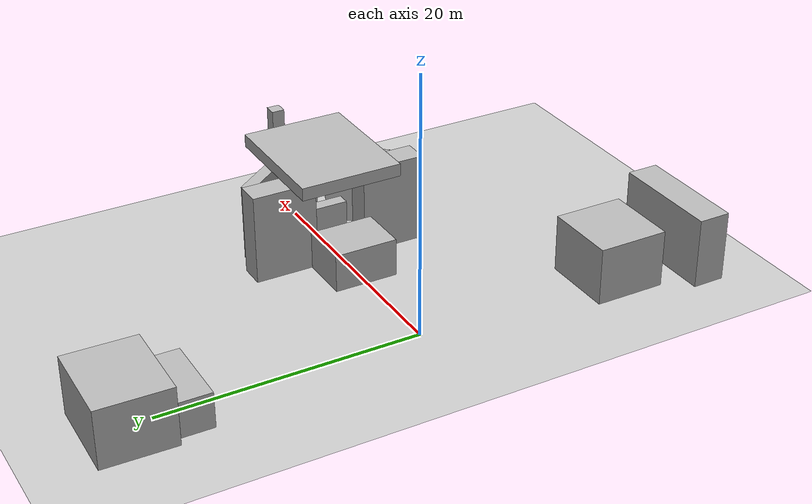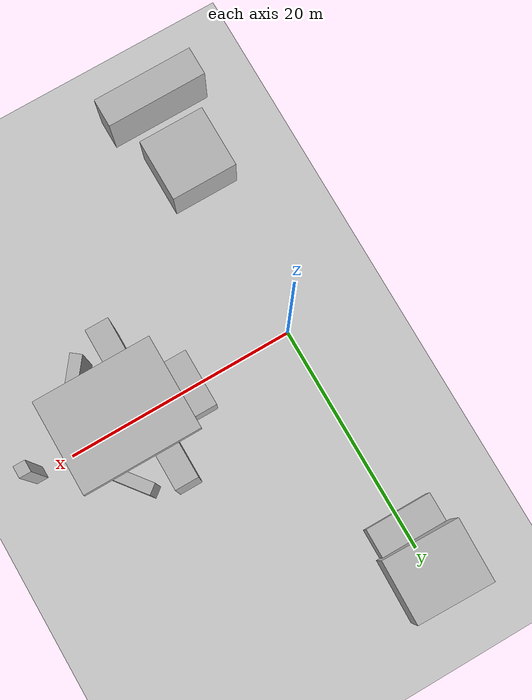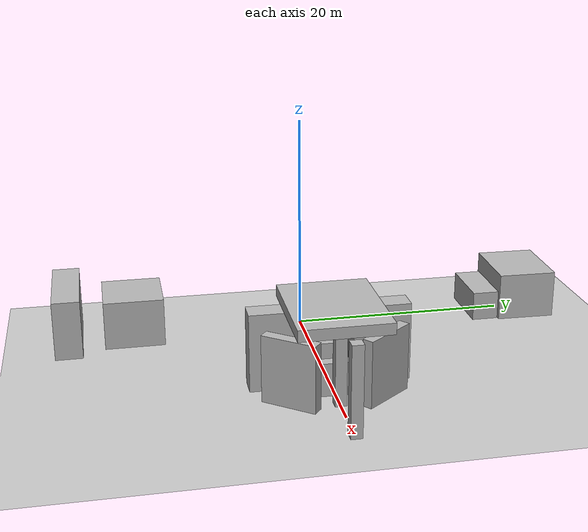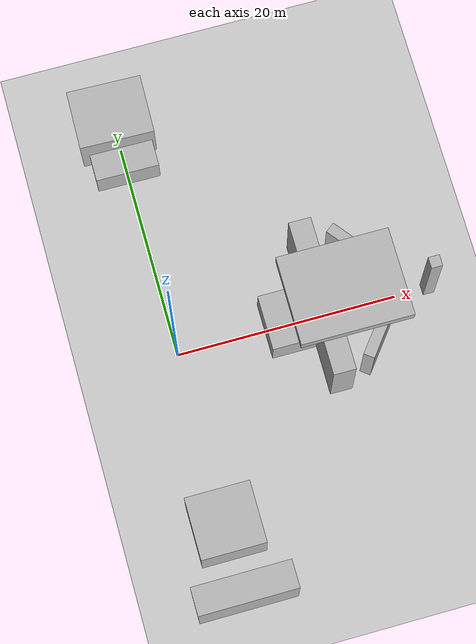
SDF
<sdf version="1.6">
 <world name="default">
  <light name="sun" type="directional">
   <pose>0 0 10 0 -0 0</pose>
   <diffuse>0.8 0.8 0.8 1</diffuse>
   <specular>0.2 0.2 0.2 1</specular>
   <attenuation>
    <range>1000</range>
    <constant>0.9</constant>
    <linear>0.01</linear>
    <quadratic>0.001</quadratic>
   </attenuation>
   <direction>-0.5 0.1 -0.9</direction>
  </light>
  <model name="ground_plane">
   <static>1</static>
   <link name="link">
    <collision name="collision">
     <geometry><plane><normal>0 0 1</normal><size>100 100</size></plane></geometry>
     <surface>
      <contact><collide_bitmask>65535</collide_bitmask></contact>
      <friction><ode><mu>100</mu><mu2>50</mu2></ode></friction>
     </surface>
    </collision>
    <visual name="visual">
     <cast_shadows>0</cast_shadows>
     <geometry><plane><normal>0 0 1</normal><size>100 100</size></plane></geometry>
     <material>
      <script><uri>file://media/materials/scripts/gazebo.material</uri><name>Gazebo/Grey</name></script>
     </material>
    </visual>
   </link>
  </model>
  <physics name="default_physics" default="0" type="ode">
   <ode>
    <solver>
     <type>quick</type>
     <iters>10</iters>
     <sor>1.3</sor>
     <use_dynamic_moi_rescaling>0</use_dynamic_moi_rescaling>
    </solver>
    <constraints>
     <cfm>0</cfm>
     <erp>0.2</erp>
     <contact_max_correcting_vel>100</contact_max_correcting_vel>
     <contact_surface_layer>0.001</contact_surface_layer>
    </constraints>
   </ode>
   <max_step_size>0.004</max_step_size>
   <real_time_factor>1</real_time_factor>
   <real_time_update_rate>250</real_time_update_rate>
  </physics>
  <model name="box0">
   <pose>9.9934 -0.001207 1.5 0 1.1e-05 -0.000728</pose>
   <link name="link">
    <collision name="collision"><geometry><box><size>4 5 3</size></box></geometry></collision>
    <visual name="visual"><geometry><box><size>4 5 3</size></box></geometry></visual>
    <inertial>
     <inertia><ixx>1</ixx><ixy>0</ixy><ixz>0</ixz><iyy>1</iyy><iyz>0</iyz><izz>1</izz></inertia>
     <mass>1</mass>
    </inertial>
   </link>
  </model>
  <model name="box1">
   <pose>13.0038 4.5 3.49994 7e-06 -3e-06 -0.000438</pose>
   <link name="link">
    <collision name="collision"><geometry><box><size>2 5 7</size></box></geometry></collision>
    <visual name="visual"><geometry><box><size>2 5 7</size></box></geometry></visual>
    <inertial>
     <inertia><ixx>1</ixx><ixy>0</ixy><ixz>0</ixz><iyy>1</iyy><iyz>0</iyz><izz>1</izz></inertia>
     <mass>1</mass>
    </inertial>
   </link>
  </model>
  <model name="box2">
   <pose>12.9985 -4.49458 3.49972 -1.1e-05 -3e-06 -0.005422</pose>
   <link name="link">
    <collision name="collision"><geometry><box><size>2 5 7</size></box></geometry></collision>
    <visual name="visual"><geometry><box><size>2 5 7</size></box></geometry></visual>
    <inertial>
     <inertia><ixx>1</ixx><ixy>0</ixy><ixz>0</ixz><iyy>1</iyy><iyz>0</iyz><izz>1</izz></inertia>
     <mass>1</mass>
    </inertial>
   </link>
  </model>
  <model name="box3">
   <pose>15.4969 0.000643 1.5 -3e-06 -5e-06 -0.003801</pose>
   <link name="link">
    <collision name="collision"><geometry><box><size>1 4 3</size></box></geometry></collision>
    <visual name="visual"><geometry><box><size>1 4 3</size></box></geometry></visual>
    <inertial>
     <inertia><ixx>1</ixx><ixy>0</ixy><ixz>0</ixz><iyy>1</iyy><iyz>0</iyz><izz>1</izz></inertia>
     <mass>1</mass>
    </inertial>
   </link>
  </model>
  <model name="box4">
   <pose>17.4945 -0.000339 3.49973 4e-06 4e-06 -0.000706</pose>
   <link name="link">
    <collision name="collision"><geometry><box><size>1 1 7</size></box></geometry></collision>
    <visual name="visual"><geometry><box><size>1 1 7</size></box></geometry></visual>
    <inertial>
     <inertia><ixx>1</ixx><ixy>0</ixy><ixz>0</ixz><iyy>1</iyy><iyz>0</iyz><izz>1</izz></inertia>
     <mass>1</mass>
    </inertial>
   </link>
  </model>
  <model name="box5">
   <pose>22.9951 0.000827 4 1e-06 -4e-06 -0.002281</pose>
   <link name="link">
    <collision name="collision"><geometry><box><size>1 1 8</size></box></geometry></collision>
    <visual name="visual"><geometry><box><size>1 1 8</size></box></geometry></visual>
    <inertial>
     <inertia><ixx>1</ixx><ixy>0</ixy><ixz>0</ixz><iyy>1</iyy><iyz>0</iyz><izz>1</izz></inertia>
     <mass>1</mass>
    </inertial>
   </link>
  </model>
  <model name="box6">
   <pose>14.9912 -0.000649 7.49986 5.2e-05 3.1e-05 -0.002298</pose>
   <link name="link">
    <collision name="collision"><geometry><box><size>10 8 1</size></box></geometry></collision>
    <visual name="visual"><geometry><box><size>10 8 1</size></box></geometry></visual>
    <inertial>
     <inertia><ixx>1</ixx><ixy>0</ixy><ixz>0</ixz><iyy>1</iyy><iyz>0</iyz><izz>1</izz></inertia>
     <mass>1</mass>
    </inertial>
   </link>
  </model>
  <model name="box7">
   <pose>16.9953 3.99999 3.00001 5e-06 1.2e-05 -1.3e-05</pose>
   <link name="link">
    <pose>0 0 0 0 -0 0.660997</pose>
    <collision name="collision"><geometry><box><size>1 5 6</size></box></geometry></collision>
    <visual name="visual"><geometry><box><size>1 5 6</size></box></geometry></visual>
    <inertial>
     <inertia><ixx>1</ixx><ixy>0</ixy><ixz>0</ixz><iyy>1</iyy><iyz>0</iyz><izz>1</izz></inertia>
     <mass>1</mass>
    </inertial>
   </link>
  </model>
  <model name="box8">
   <pose>16.9954 -4 2.99987 1.4e-05 3e-06 -8.6e-05</pose>
   <link name="link">
    <pose>0 0 0 0 -0 -0.660997</pose>
    <collision name="collision"><geometry><box><size>1 5 6</size></box></geometry></collision>
    <visual name="visual"><geometry><box><size>1 5 6</size></box></geometry></visual>
    <inertial>
     <inertia><ixx>1</ixx><ixy>0</ixy><ixz>0</ixz><iyy>1</iyy><iyz>0</iyz><izz>1</izz></inertia>
     <mass>1</mass>
    </inertial>
   </link>
  </model>
  <model name="box26">
   <pose>0.038655 -22.0161 2.74989 -1.2e-05 2.7e-05 0.002146</pose>
   <link name="link">
    <collision name="collision"><geometry><box><size>8.75 2.5 5.5</size></box></geometry></collision>
    <visual name="visual"><geometry><box><size>8.75 2.5 5.5</size></box></geometry></visual>
    <inertial>
     <inertia><ixx>1</ixx><ixy>0</ixy><ixz>0</ixz><iyy>1</iyy><iyz>0</iyz><izz>1</izz></inertia>
     <mass>1</mass>
    </inertial>
   </link>
  </model>
  <model name="box65">
   <pose>0.007398 -16.0006 2.24994 0 8e-06 0.000169</pose>
   <link name="link">
    <collision name="collision"><geometry><box><size>5.75 5.5 4.5</size></box></geometry></collision>
    <visual name="visual"><geometry><box><size>5.75 5.5 4.5</size></box></geometry></visual>
    <inertial>
     <inertia><ixx>1</ixx><ixy>0</ixy><ixz>0</ixz><iyy>1</iyy><iyz>0</iyz><izz>1</izz></inertia>
     <mass>1</mass>
    </inertial>
   </link>
  </model>
  <model name="box66">
   <pose>-0.016461 17.9947 1.37496 -2e-05 3e-06 -0.006849</pose>
   <link name="link">
    <collision name="collision"><geometry><box><size>5.75 2.5 2.75</size></box></geometry></collision>
    <visual name="visual"><geometry><box><size>5.75 2.5 2.75</size></box></geometry></visual>
    <inertial>
     <inertia><ixx>1</ixx><ixy>0</ixy><ixz>0</ixz><iyy>1</iyy><iyz>0</iyz><izz>1</izz></inertia>
     <mass>1</mass>
    </inertial>
   </link>
  </model>
  <model name="box67">
   <pose>-0.131628 22.1016 2.24991 6e-06 2.3e-05 -0.024182</pose>
   <link name="link">
    <collision name="collision"><geometry><box><size>6.75 5.5 4.5</size></box></geometry></collision>
    <visual name="visual"><geometry><box><size>6.75 5.5 4.5</size></box></geometry></visual>
    <inertial>
     <inertia><ixx>1</ixx><ixy>0</ixy><ixz>0</ixz><iyy>1</iyy><iyz>0</iyz><izz>1</izz></inertia>
     <mass>1</mass>
    </inertial>
   </link>
  </model>
  <gravity>0 0 -9.8066</gravity>
  <magnetic_field>6e-06 2.3e-05 -4.2e-05</magnetic_field>
  <atmosphere type="adiabatic"/>
  <scene><ambient>0.4 0.4 0.4 1</ambient><background>0.7 0.7 0.7 1</background><shadows>1</shadows></scene>
  <audio><device>default</device></audio>
  <spherical_coordinates>
   <surface_model>EARTH_WGS84</surface_model>
   <latitude_deg>0</latitude_deg>
   <longitude_deg>0</longitude_deg>
   <elevation>0</elevation>
   <heading_deg>0</heading_deg>
  </spherical_coordinates>
 </world>
</sdf>
